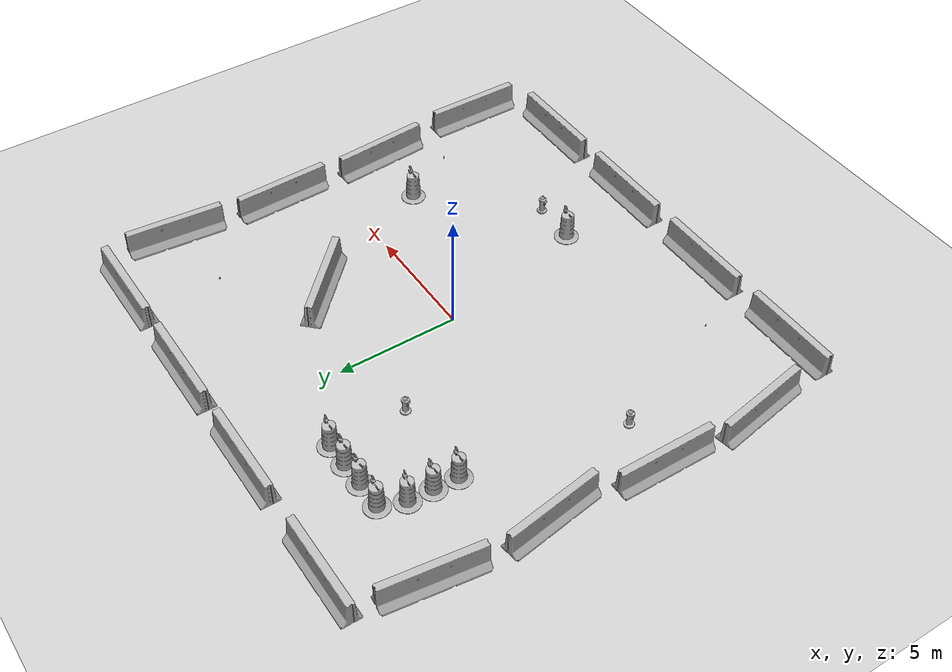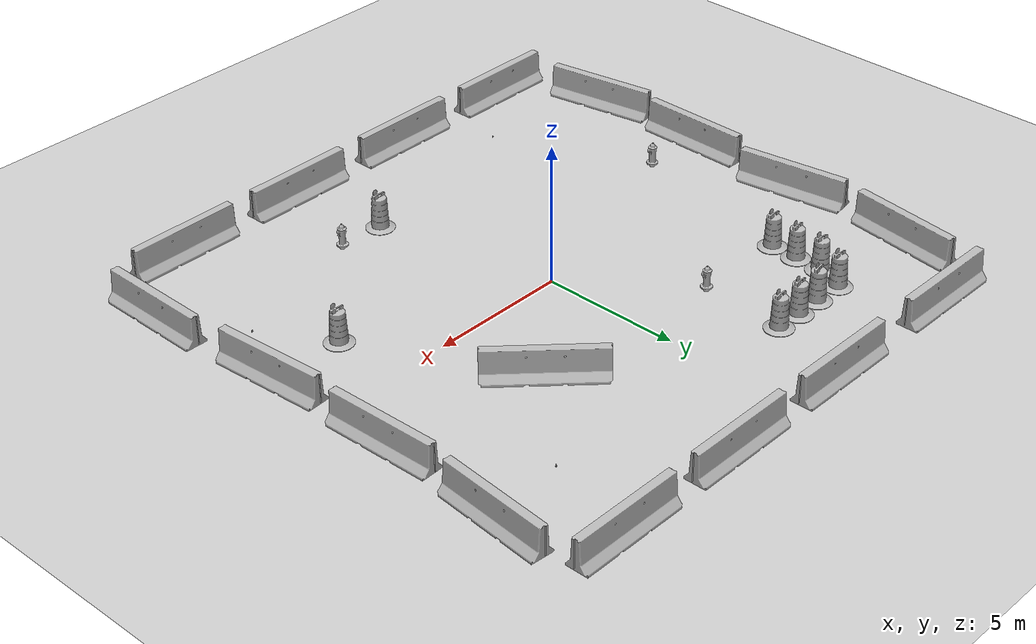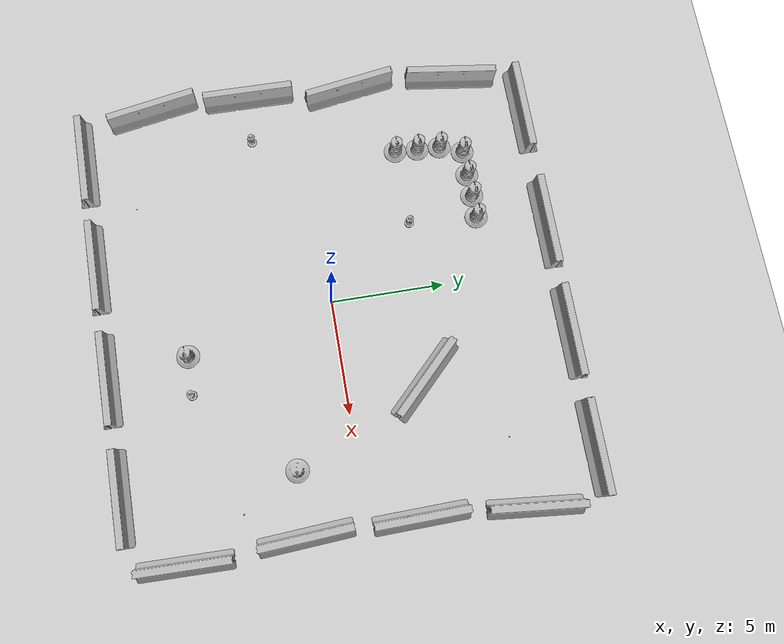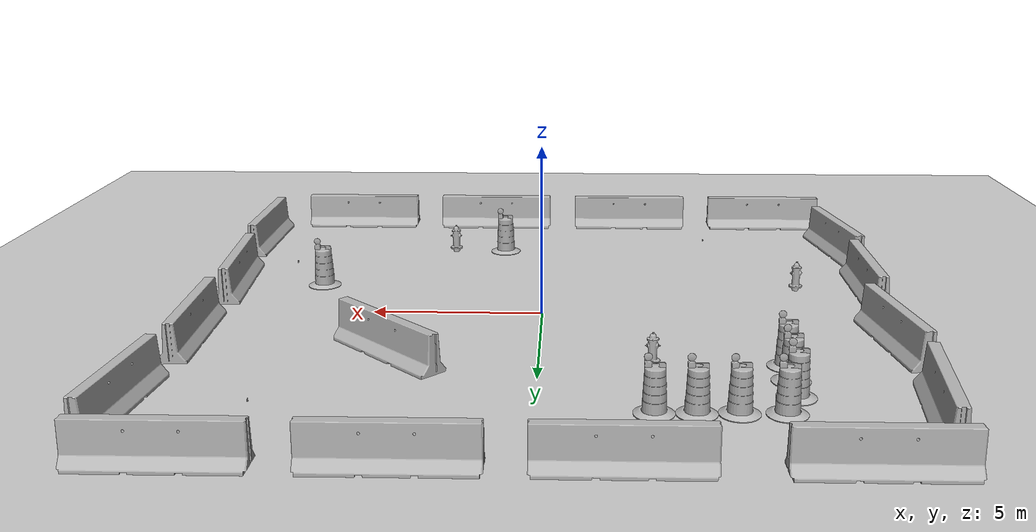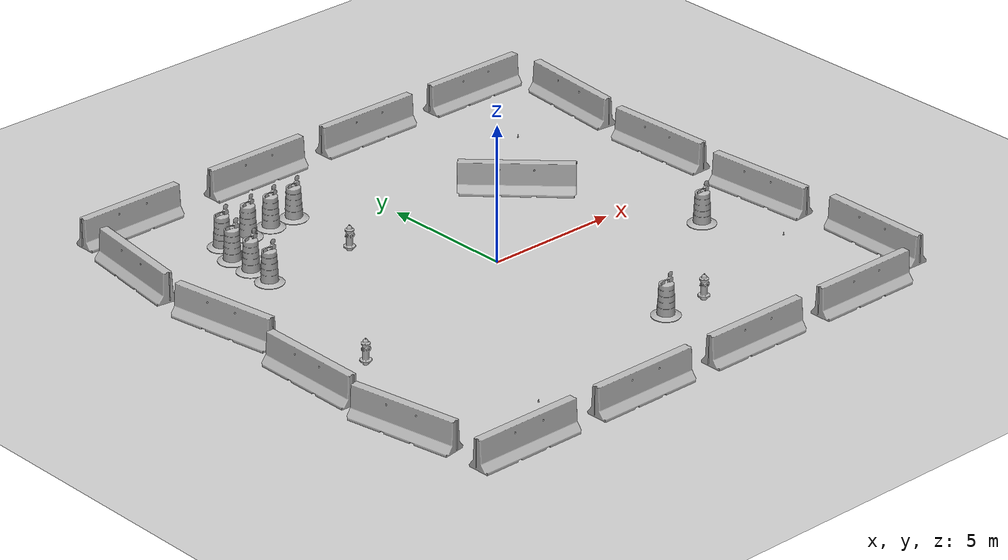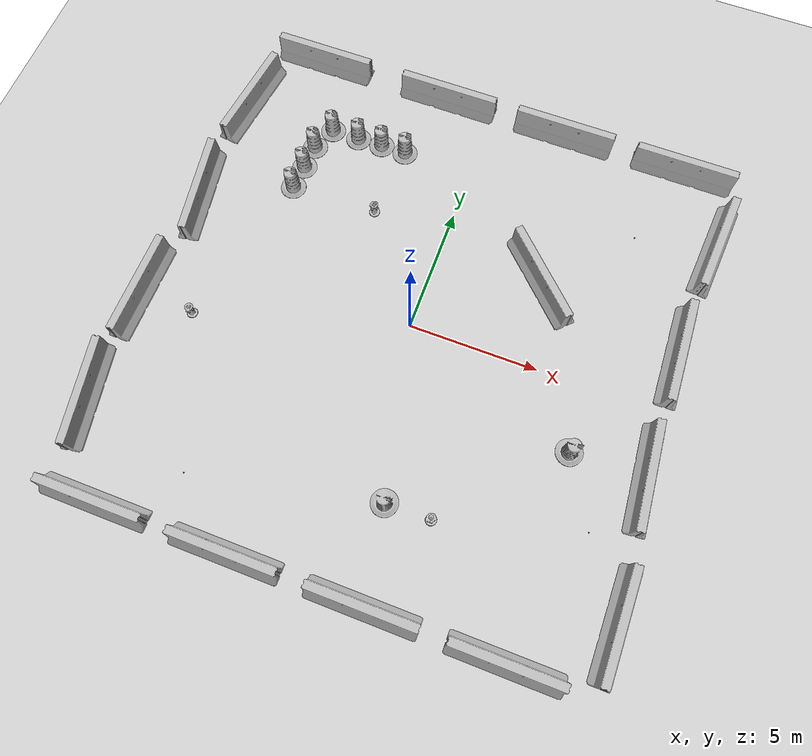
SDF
<sdf version="1.6">
 <world name="default">
  <light name="sun" type="directional">
   <pose>0 0 10 0 -0 0</pose>
   <diffuse>0.8 0.8 0.8 1</diffuse>
   <specular>0.2 0.2 0.2 1</specular>
   <attenuation>
    <range>1000</range>
    <constant>0.9</constant>
    <linear>0.01</linear>
    <quadratic>0.001</quadratic>
   </attenuation>
   <direction>-0.5 0.1 -0.9</direction>
  </light>
  <model name="ground_plane">
   <static>1</static>
   <link name="link">
    <collision name="collision">
     <geometry><plane><normal>0 0 1</normal><size>100 100</size></plane></geometry>
     <surface><friction><ode><mu>100</mu><mu2>50</mu2></ode></friction></surface>
    </collision>
    <visual name="visual">
     <cast_shadows>0</cast_shadows>
     <geometry><plane><normal>0 0 1</normal><size>100 100</size></plane></geometry>
     <material>
      <script><uri>file://media/materials/scripts/gazebo.material</uri><name>Gazebo/Grey</name></script>
     </material>
    </visual>
    <velocity_decay><linear>0</linear><angular>0</angular></velocity_decay>
   </link>
  </model>
  <physics name="default_physics" default="0" type="ode">
   <max_step_size>0.01</max_step_size>
   <real_time_factor>1</real_time_factor>
   <real_time_update_rate>100</real_time_update_rate>
  </physics>
  <scene><ambient>0.4 0.4 0.4 1</ambient><background>0.7 0.7 0.7 1</background><shadows>1</shadows></scene>
  <model name="jersey_barrier">
   <static>1</static>
   <link name="link">
    <visual name="visual">
     <geometry>
      <mesh><uri>model://jersey_barrier/meshes/jersey_barrier.dae</uri><scale>1 1 1</scale></mesh>
     </geometry>
    </visual>
    <collision name="upright">
     <pose>0 0 0.5715 0 -0 0</pose>
     <geometry><box><size>4.06542 0.3063 1.143</size></box></geometry>
    </collision>
    <collision name="base">
     <pose>0 0 0.032258 0 -0 0</pose>
     <geometry><box><size>4.06542 0.8107 0.064516</size></box></geometry>
    </collision>
    <collision name="base2">
     <pose>0 0 0.1 0 -0 0</pose>
     <geometry><box><size>4.06542 0.65 0.1</size></box></geometry>
    </collision>
    <collision name="base3">
     <pose>0 0 0.2 0 -0 0</pose>
     <geometry><box><size>4.06542 0.5 0.1</size></box></geometry>
    </collision>
    <collision name="left-angle">
     <pose>0 -0.224 0.2401 0.9 -0 0</pose>
     <geometry><box><size>4.06542 0.5 0.064516</size></box></geometry>
    </collision>
    <collision name="right-angle">
     <pose>0 0.224 0.2401 -0.9 0 0</pose>
     <geometry><box><size>4.06542 0.5 0.064516</size></box></geometry>
    </collision>
    <velocity_decay><linear>0</linear><angular>0</angular></velocity_decay>
   </link>
   <pose>-8 -10 0 0 -0 0</pose>
  </model>
  <model name="jersey_barrier_0">
   <static>1</static>
   <link name="link">
    <visual name="visual">
     <geometry>
      <mesh><uri>model://jersey_barrier/meshes/jersey_barrier.dae</uri><scale>1 1 1</scale></mesh>
     </geometry>
    </visual>
    <collision name="upright">
     <pose>0 0 0.5715 0 -0 0</pose>
     <geometry><box><size>4.06542 0.3063 1.143</size></box></geometry>
    </collision>
    <collision name="base">
     <pose>0 0 0.032258 0 -0 0</pose>
     <geometry><box><size>4.06542 0.8107 0.064516</size></box></geometry>
    </collision>
    <collision name="base2">
     <pose>0 0 0.1 0 -0 0</pose>
     <geometry><box><size>4.06542 0.65 0.1</size></box></geometry>
    </collision>
    <collision name="base3">
     <pose>0 0 0.2 0 -0 0</pose>
     <geometry><box><size>4.06542 0.5 0.1</size></box></geometry>
    </collision>
    <collision name="left-angle">
     <pose>0 -0.224 0.2401 0.9 -0 0</pose>
     <geometry><box><size>4.06542 0.5 0.064516</size></box></geometry>
    </collision>
    <collision name="right-angle">
     <pose>0 0.224 0.2401 -0.9 0 0</pose>
     <geometry><box><size>4.06542 0.5 0.064516</size></box></geometry>
    </collision>
    <velocity_decay><linear>0</linear><angular>0</angular></velocity_decay>
   </link>
   <pose>-3 -10 0 0 -0 0</pose>
  </model>
  <model name="jersey_barrier_1">
   <static>1</static>
   <link name="link">
    <visual name="visual">
     <geometry>
      <mesh><uri>model://jersey_barrier/meshes/jersey_barrier.dae</uri><scale>1 1 1</scale></mesh>
     </geometry>
    </visual>
    <collision name="upright">
     <pose>0 0 0.5715 0 -0 0</pose>
     <geometry><box><size>4.06542 0.3063 1.143</size></box></geometry>
    </collision>
    <collision name="base">
     <pose>0 0 0.032258 0 -0 0</pose>
     <geometry><box><size>4.06542 0.8107 0.064516</size></box></geometry>
    </collision>
    <collision name="base2">
     <pose>0 0 0.1 0 -0 0</pose>
     <geometry><box><size>4.06542 0.65 0.1</size></box></geometry>
    </collision>
    <collision name="base3">
     <pose>0 0 0.2 0 -0 0</pose>
     <geometry><box><size>4.06542 0.5 0.1</size></box></geometry>
    </collision>
    <collision name="left-angle">
     <pose>0 -0.224 0.2401 0.9 -0 0</pose>
     <geometry><box><size>4.06542 0.5 0.064516</size></box></geometry>
    </collision>
    <collision name="right-angle">
     <pose>0 0.224 0.2401 -0.9 0 0</pose>
     <geometry><box><size>4.06542 0.5 0.064516</size></box></geometry>
    </collision>
    <velocity_decay><linear>0</linear><angular>0</angular></velocity_decay>
   </link>
   <pose>2 -10 0 0 -0 0</pose>
  </model>
  <model name="jersey_barrier_2">
   <static>1</static>
   <link name="link">
    <visual name="visual">
     <geometry>
      <mesh><uri>model://jersey_barrier/meshes/jersey_barrier.dae</uri><scale>1 1 1</scale></mesh>
     </geometry>
    </visual>
    <collision name="upright">
     <pose>0 0 0.5715 0 -0 0</pose>
     <geometry><box><size>4.06542 0.3063 1.143</size></box></geometry>
    </collision>
    <collision name="base">
     <pose>0 0 0.032258 0 -0 0</pose>
     <geometry><box><size>4.06542 0.8107 0.064516</size></box></geometry>
    </collision>
    <collision name="base2">
     <pose>0 0 0.1 0 -0 0</pose>
     <geometry><box><size>4.06542 0.65 0.1</size></box></geometry>
    </collision>
    <collision name="base3">
     <pose>0 0 0.2 0 -0 0</pose>
     <geometry><box><size>4.06542 0.5 0.1</size></box></geometry>
    </collision>
    <collision name="left-angle">
     <pose>0 -0.224 0.2401 0.9 -0 0</pose>
     <geometry><box><size>4.06542 0.5 0.064516</size></box></geometry>
    </collision>
    <collision name="right-angle">
     <pose>0 0.224 0.2401 -0.9 0 0</pose>
     <geometry><box><size>4.06542 0.5 0.064516</size></box></geometry>
    </collision>
    <velocity_decay><linear>0</linear><angular>0</angular></velocity_decay>
   </link>
   <pose>7 -10 0 0 -0 0</pose>
  </model>
  <model name="jersey_barrier_3">
   <static>1</static>
   <link name="link">
    <visual name="visual">
     <geometry>
      <mesh><uri>model://jersey_barrier/meshes/jersey_barrier.dae</uri><scale>1 1 1</scale></mesh>
     </geometry>
    </visual>
    <collision name="upright">
     <pose>0 0 0.5715 0 -0 0</pose>
     <geometry><box><size>4.06542 0.3063 1.143</size></box></geometry>
    </collision>
    <collision name="base">
     <pose>0 0 0.032258 0 -0 0</pose>
     <geometry><box><size>4.06542 0.8107 0.064516</size></box></geometry>
    </collision>
    <collision name="base2">
     <pose>0 0 0.1 0 -0 0</pose>
     <geometry><box><size>4.06542 0.65 0.1</size></box></geometry>
    </collision>
    <collision name="base3">
     <pose>0 0 0.2 0 -0 0</pose>
     <geometry><box><size>4.06542 0.5 0.1</size></box></geometry>
    </collision>
    <collision name="left-angle">
     <pose>0 -0.224 0.2401 0.9 -0 0</pose>
     <geometry><box><size>4.06542 0.5 0.064516</size></box></geometry>
    </collision>
    <collision name="right-angle">
     <pose>0 0.224 0.2401 -0.9 0 0</pose>
     <geometry><box><size>4.06542 0.5 0.064516</size></box></geometry>
    </collision>
    <velocity_decay><linear>0</linear><angular>0</angular></velocity_decay>
   </link>
   <pose>-7.50675 10 0 0 -0 0</pose>
  </model>
  <model name="jersey_barrier_4">
   <static>1</static>
   <link name="link">
    <visual name="visual">
     <geometry>
      <mesh><uri>model://jersey_barrier/meshes/jersey_barrier.dae</uri><scale>1 1 1</scale></mesh>
     </geometry>
    </visual>
    <collision name="upright">
     <pose>0 0 0.5715 0 -0 0</pose>
     <geometry><box><size>4.06542 0.3063 1.143</size></box></geometry>
    </collision>
    <collision name="base">
     <pose>0 0 0.032258 0 -0 0</pose>
     <geometry><box><size>4.06542 0.8107 0.064516</size></box></geometry>
    </collision>
    <collision name="base2">
     <pose>0 0 0.1 0 -0 0</pose>
     <geometry><box><size>4.06542 0.65 0.1</size></box></geometry>
    </collision>
    <collision name="base3">
     <pose>0 0 0.2 0 -0 0</pose>
     <geometry><box><size>4.06542 0.5 0.1</size></box></geometry>
    </collision>
    <collision name="left-angle">
     <pose>0 -0.224 0.2401 0.9 -0 0</pose>
     <geometry><box><size>4.06542 0.5 0.064516</size></box></geometry>
    </collision>
    <collision name="right-angle">
     <pose>0 0.224 0.2401 -0.9 0 0</pose>
     <geometry><box><size>4.06542 0.5 0.064516</size></box></geometry>
    </collision>
    <velocity_decay><linear>0</linear><angular>0</angular></velocity_decay>
   </link>
   <pose>-2 10 0 0 -0 0</pose>
  </model>
  <model name="jersey_barrier_5">
   <static>1</static>
   <link name="link">
    <visual name="visual">
     <geometry>
      <mesh><uri>model://jersey_barrier/meshes/jersey_barrier.dae</uri><scale>1 1 1</scale></mesh>
     </geometry>
    </visual>
    <collision name="upright">
     <pose>0 0 0.5715 0 -0 0</pose>
     <geometry><box><size>4.06542 0.3063 1.143</size></box></geometry>
    </collision>
    <collision name="base">
     <pose>0 0 0.032258 0 -0 0</pose>
     <geometry><box><size>4.06542 0.8107 0.064516</size></box></geometry>
    </collision>
    <collision name="base2">
     <pose>0 0 0.1 0 -0 0</pose>
     <geometry><box><size>4.06542 0.65 0.1</size></box></geometry>
    </collision>
    <collision name="base3">
     <pose>0 0 0.2 0 -0 0</pose>
     <geometry><box><size>4.06542 0.5 0.1</size></box></geometry>
    </collision>
    <collision name="left-angle">
     <pose>0 -0.224 0.2401 0.9 -0 0</pose>
     <geometry><box><size>4.06542 0.5 0.064516</size></box></geometry>
    </collision>
    <collision name="right-angle">
     <pose>0 0.224 0.2401 -0.9 0 0</pose>
     <geometry><box><size>4.06542 0.5 0.064516</size></box></geometry>
    </collision>
    <velocity_decay><linear>0</linear><angular>0</angular></velocity_decay>
   </link>
   <pose>3 10 0 0 -0 0</pose>
  </model>
  <model name="jersey_barrier_6">
   <static>1</static>
   <link name="link">
    <visual name="visual">
     <geometry>
      <mesh><uri>model://jersey_barrier/meshes/jersey_barrier.dae</uri><scale>1 1 1</scale></mesh>
     </geometry>
    </visual>
    <collision name="upright">
     <pose>0 0 0.5715 0 -0 0</pose>
     <geometry><box><size>4.06542 0.3063 1.143</size></box></geometry>
    </collision>
    <collision name="base">
     <pose>0 0 0.032258 0 -0 0</pose>
     <geometry><box><size>4.06542 0.8107 0.064516</size></box></geometry>
    </collision>
    <collision name="base2">
     <pose>0 0 0.1 0 -0 0</pose>
     <geometry><box><size>4.06542 0.65 0.1</size></box></geometry>
    </collision>
    <collision name="base3">
     <pose>0 0 0.2 0 -0 0</pose>
     <geometry><box><size>4.06542 0.5 0.1</size></box></geometry>
    </collision>
    <collision name="left-angle">
     <pose>0 -0.224 0.2401 0.9 -0 0</pose>
     <geometry><box><size>4.06542 0.5 0.064516</size></box></geometry>
    </collision>
    <collision name="right-angle">
     <pose>0 0.224 0.2401 -0.9 0 0</pose>
     <geometry><box><size>4.06542 0.5 0.064516</size></box></geometry>
    </collision>
    <velocity_decay><linear>0</linear><angular>0</angular></velocity_decay>
   </link>
   <pose>8 10 0 0 -0 0</pose>
  </model>
  <model name="jersey_barrier_7">
   <static>1</static>
   <link name="link">
    <visual name="visual">
     <geometry>
      <mesh><uri>model://jersey_barrier/meshes/jersey_barrier.dae</uri><scale>1 1 1</scale></mesh>
     </geometry>
    </visual>
    <collision name="upright">
     <pose>0 0 0.5715 0 -0 0</pose>
     <geometry><box><size>4.06542 0.3063 1.143</size></box></geometry>
    </collision>
    <collision name="base">
     <pose>0 0 0.032258 0 -0 0</pose>
     <geometry><box><size>4.06542 0.8107 0.064516</size></box></geometry>
    </collision>
    <collision name="base2">
     <pose>0 0 0.1 0 -0 0</pose>
     <geometry><box><size>4.06542 0.65 0.1</size></box></geometry>
    </collision>
    <collision name="base3">
     <pose>0 0 0.2 0 -0 0</pose>
     <geometry><box><size>4.06542 0.5 0.1</size></box></geometry>
    </collision>
    <collision name="left-angle">
     <pose>0 -0.224 0.2401 0.9 -0 0</pose>
     <geometry><box><size>4.06542 0.5 0.064516</size></box></geometry>
    </collision>
    <collision name="right-angle">
     <pose>0 0.224 0.2401 -0.9 0 0</pose>
     <geometry><box><size>4.06542 0.5 0.064516</size></box></geometry>
    </collision>
    <velocity_decay><linear>0</linear><angular>0</angular></velocity_decay>
   </link>
   <pose>9.74902 -2.57759 0 0 -0 1.64</pose>
  </model>
  <model name="jersey_barrier_8">
   <static>1</static>
   <link name="link">
    <visual name="visual">
     <geometry>
      <mesh><uri>model://jersey_barrier/meshes/jersey_barrier.dae</uri><scale>1 1 1</scale></mesh>
     </geometry>
    </visual>
    <collision name="upright">
     <pose>0 0 0.5715 0 -0 0</pose>
     <geometry><box><size>4.06542 0.3063 1.143</size></box></geometry>
    </collision>
    <collision name="base">
     <pose>0 0 0.032258 0 -0 0</pose>
     <geometry><box><size>4.06542 0.8107 0.064516</size></box></geometry>
    </collision>
    <collision name="base2">
     <pose>0 0 0.1 0 -0 0</pose>
     <geometry><box><size>4.06542 0.65 0.1</size></box></geometry>
    </collision>
    <collision name="base3">
     <pose>0 0 0.2 0 -0 0</pose>
     <geometry><box><size>4.06542 0.5 0.1</size></box></geometry>
    </collision>
    <collision name="left-angle">
     <pose>0 -0.224 0.2401 0.9 -0 0</pose>
     <geometry><box><size>4.06542 0.5 0.064516</size></box></geometry>
    </collision>
    <collision name="right-angle">
     <pose>0 0.224 0.2401 -0.9 0 0</pose>
     <geometry><box><size>4.06542 0.5 0.064516</size></box></geometry>
    </collision>
    <velocity_decay><linear>0</linear><angular>0</angular></velocity_decay>
   </link>
   <pose>9.70141 2.24369 0 0 -0 1.6</pose>
  </model>
  <model name="jersey_barrier_9">
   <static>1</static>
   <link name="link">
    <visual name="visual">
     <geometry>
      <mesh><uri>model://jersey_barrier/meshes/jersey_barrier.dae</uri><scale>1 1 1</scale></mesh>
     </geometry>
    </visual>
    <collision name="upright">
     <pose>0 0 0.5715 0 -0 0</pose>
     <geometry><box><size>4.06542 0.3063 1.143</size></box></geometry>
    </collision>
    <collision name="base">
     <pose>0 0 0.032258 0 -0 0</pose>
     <geometry><box><size>4.06542 0.8107 0.064516</size></box></geometry>
    </collision>
    <collision name="base2">
     <pose>0 0 0.1 0 -0 0</pose>
     <geometry><box><size>4.06542 0.65 0.1</size></box></geometry>
    </collision>
    <collision name="base3">
     <pose>0 0 0.2 0 -0 0</pose>
     <geometry><box><size>4.06542 0.5 0.1</size></box></geometry>
    </collision>
    <collision name="left-angle">
     <pose>0 -0.224 0.2401 0.9 -0 0</pose>
     <geometry><box><size>4.06542 0.5 0.064516</size></box></geometry>
    </collision>
    <collision name="right-angle">
     <pose>0 0.224 0.2401 -0.9 0 0</pose>
     <geometry><box><size>4.06542 0.5 0.064516</size></box></geometry>
    </collision>
    <velocity_decay><linear>0</linear><angular>0</angular></velocity_decay>
   </link>
   <pose>-10.0607 -6.69856 0 0 0 -1.4</pose>
  </model>
  <model name="jersey_barrier_10">
   <static>1</static>
   <link name="link">
    <visual name="visual">
     <geometry>
      <mesh><uri>model://jersey_barrier/meshes/jersey_barrier.dae</uri><scale>1 1 1</scale></mesh>
     </geometry>
    </visual>
    <collision name="upright">
     <pose>0 0 0.5715 0 -0 0</pose>
     <geometry><box><size>4.06542 0.3063 1.143</size></box></geometry>
    </collision>
    <collision name="base">
     <pose>0 0 0.032258 0 -0 0</pose>
     <geometry><box><size>4.06542 0.8107 0.064516</size></box></geometry>
    </collision>
    <collision name="base2">
     <pose>0 0 0.1 0 -0 0</pose>
     <geometry><box><size>4.06542 0.65 0.1</size></box></geometry>
    </collision>
    <collision name="base3">
     <pose>0 0 0.2 0 -0 0</pose>
     <geometry><box><size>4.06542 0.5 0.1</size></box></geometry>
    </collision>
    <collision name="left-angle">
     <pose>0 -0.224 0.2401 0.9 -0 0</pose>
     <geometry><box><size>4.06542 0.5 0.064516</size></box></geometry>
    </collision>
    <collision name="right-angle">
     <pose>0 0.224 0.2401 -0.9 0 0</pose>
     <geometry><box><size>4.06542 0.5 0.064516</size></box></geometry>
    </collision>
    <velocity_decay><linear>0</linear><angular>0</angular></velocity_decay>
   </link>
   <pose>-10.0774 -2.27159 0 0 -0 1.56</pose>
  </model>
  <model name="jersey_barrier_11">
   <static>1</static>
   <link name="link">
    <visual name="visual">
     <geometry>
      <mesh><uri>model://jersey_barrier/meshes/jersey_barrier.dae</uri><scale>1 1 1</scale></mesh>
     </geometry>
    </visual>
    <collision name="upright">
     <pose>0 0 0.5715 0 -0 0</pose>
     <geometry><box><size>4.06542 0.3063 1.143</size></box></geometry>
    </collision>
    <collision name="base">
     <pose>0 0 0.032258 0 -0 0</pose>
     <geometry><box><size>4.06542 0.8107 0.064516</size></box></geometry>
    </collision>
    <collision name="base2">
     <pose>0 0 0.1 0 -0 0</pose>
     <geometry><box><size>4.06542 0.65 0.1</size></box></geometry>
    </collision>
    <collision name="base3">
     <pose>0 0 0.2 0 -0 0</pose>
     <geometry><box><size>4.06542 0.5 0.1</size></box></geometry>
    </collision>
    <collision name="left-angle">
     <pose>0 -0.224 0.2401 0.9 -0 0</pose>
     <geometry><box><size>4.06542 0.5 0.064516</size></box></geometry>
    </collision>
    <collision name="right-angle">
     <pose>0 0.224 0.2401 -0.9 0 0</pose>
     <geometry><box><size>4.06542 0.5 0.064516</size></box></geometry>
    </collision>
    <velocity_decay><linear>0</linear><angular>0</angular></velocity_decay>
   </link>
   <pose>-9.77013 2.34791 0 0 -0 1.72</pose>
  </model>
  <model name="jersey_barrier_12">
   <static>1</static>
   <link name="link">
    <visual name="visual">
     <geometry>
      <mesh><uri>model://jersey_barrier/meshes/jersey_barrier.dae</uri><scale>1 1 1</scale></mesh>
     </geometry>
    </visual>
    <collision name="upright">
     <pose>0 0 0.5715 0 -0 0</pose>
     <geometry><box><size>4.06542 0.3063 1.143</size></box></geometry>
    </collision>
    <collision name="base">
     <pose>0 0 0.032258 0 -0 0</pose>
     <geometry><box><size>4.06542 0.8107 0.064516</size></box></geometry>
    </collision>
    <collision name="base2">
     <pose>0 0 0.1 0 -0 0</pose>
     <geometry><box><size>4.06542 0.65 0.1</size></box></geometry>
    </collision>
    <collision name="base3">
     <pose>0 0 0.2 0 -0 0</pose>
     <geometry><box><size>4.06542 0.5 0.1</size></box></geometry>
    </collision>
    <collision name="left-angle">
     <pose>0 -0.224 0.2401 0.9 -0 0</pose>
     <geometry><box><size>4.06542 0.5 0.064516</size></box></geometry>
    </collision>
    <collision name="right-angle">
     <pose>0 0.224 0.2401 -0.9 0 0</pose>
     <geometry><box><size>4.06542 0.5 0.064516</size></box></geometry>
    </collision>
    <velocity_decay><linear>0</linear><angular>0</angular></velocity_decay>
   </link>
   <pose>10.0879 -7.62159 0 0 -0 1.56</pose>
  </model>
  <model name="jersey_barrier_13">
   <static>1</static>
   <link name="link">
    <visual name="visual">
     <geometry>
      <mesh><uri>model://jersey_barrier/meshes/jersey_barrier.dae</uri><scale>1 1 1</scale></mesh>
     </geometry>
    </visual>
    <collision name="upright">
     <pose>0 0 0.5715 0 -0 0</pose>
     <geometry><box><size>4.06542 0.3063 1.143</size></box></geometry>
    </collision>
    <collision name="base">
     <pose>0 0 0.032258 0 -0 0</pose>
     <geometry><box><size>4.06542 0.8107 0.064516</size></box></geometry>
    </collision>
    <collision name="base2">
     <pose>0 0 0.1 0 -0 0</pose>
     <geometry><box><size>4.06542 0.65 0.1</size></box></geometry>
    </collision>
    <collision name="base3">
     <pose>0 0 0.2 0 -0 0</pose>
     <geometry><box><size>4.06542 0.5 0.1</size></box></geometry>
    </collision>
    <collision name="left-angle">
     <pose>0 -0.224 0.2401 0.9 -0 0</pose>
     <geometry><box><size>4.06542 0.5 0.064516</size></box></geometry>
    </collision>
    <collision name="right-angle">
     <pose>0 0.224 0.2401 -0.9 0 0</pose>
     <geometry><box><size>4.06542 0.5 0.064516</size></box></geometry>
    </collision>
    <velocity_decay><linear>0</linear><angular>0</angular></velocity_decay>
   </link>
   <pose>10 7 0 0 -0 1.48</pose>
  </model>
  <model name="jersey_barrier_14">
   <static>1</static>
   <link name="link">
    <visual name="visual">
     <geometry>
      <mesh><uri>model://jersey_barrier/meshes/jersey_barrier.dae</uri><scale>1 1 1</scale></mesh>
     </geometry>
    </visual>
    <collision name="upright">
     <pose>0 0 0.5715 0 -0 0</pose>
     <geometry><box><size>4.06542 0.3063 1.143</size></box></geometry>
    </collision>
    <collision name="base">
     <pose>0 0 0.032258 0 -0 0</pose>
     <geometry><box><size>4.06542 0.8107 0.064516</size></box></geometry>
    </collision>
    <collision name="base2">
     <pose>0 0 0.1 0 -0 0</pose>
     <geometry><box><size>4.06542 0.65 0.1</size></box></geometry>
    </collision>
    <collision name="base3">
     <pose>0 0 0.2 0 -0 0</pose>
     <geometry><box><size>4.06542 0.5 0.1</size></box></geometry>
    </collision>
    <collision name="left-angle">
     <pose>0 -0.224 0.2401 0.9 -0 0</pose>
     <geometry><box><size>4.06542 0.5 0.064516</size></box></geometry>
    </collision>
    <collision name="right-angle">
     <pose>0 0.224 0.2401 -0.9 0 0</pose>
     <geometry><box><size>4.06542 0.5 0.064516</size></box></geometry>
    </collision>
    <velocity_decay><linear>0</linear><angular>0</angular></velocity_decay>
   </link>
   <pose>-9.64482 7.05946 0 0 -0 1.44</pose>
  </model>
  <model name="fire_hydrant">
   <static>1</static>
   <link name="link">
    <collision name="collision">
     <geometry><mesh><uri>model://fire_hydrant/meshes/fire_hydrant.dae</uri><scale>1 1 1</scale></mesh></geometry>
    </collision>
    <visual name="visual">
     <geometry><mesh><uri>model://fire_hydrant/meshes/fire_hydrant.dae</uri><scale>1 1 1</scale></mesh></geometry>
    </visual>
    <velocity_decay><linear>0</linear><angular>0</angular></velocity_decay>
   </link>
   <pose>3.18024 -6.51118 0 0 -0 0</pose>
  </model>
  <model name="fire_hydrant_0">
   <static>1</static>
   <link name="link">
    <collision name="collision">
     <geometry><mesh><uri>model://fire_hydrant/meshes/fire_hydrant.dae</uri><scale>1 1 1</scale></mesh></geometry>
    </collision>
    <visual name="visual">
     <geometry><mesh><uri>model://fire_hydrant/meshes/fire_hydrant.dae</uri><scale>1 1 1</scale></mesh></geometry>
    </visual>
    <velocity_decay><linear>0</linear><angular>0</angular></velocity_decay>
   </link>
   <pose>-3 4 0 0 -0 0</pose>
  </model>
  <model name="fire_hydrant_1">
   <static>1</static>
   <link name="link">
    <collision name="collision">
     <geometry><mesh><uri>model://fire_hydrant/meshes/fire_hydrant.dae</uri><scale>1 1 1</scale></mesh></geometry>
    </collision>
    <visual name="visual">
     <geometry><mesh><uri>model://fire_hydrant/meshes/fire_hydrant.dae</uri><scale>1 1 1</scale></mesh></geometry>
    </visual>
    <velocity_decay><linear>0</linear><angular>0</angular></velocity_decay>
   </link>
   <pose>-7.90686 -2.41363 0 0 -0 0</pose>
  </model>
  <model name="jersey_barrier_15">
   <static>1</static>
   <link name="link">
    <visual name="visual">
     <geometry>
      <mesh><uri>model://jersey_barrier/meshes/jersey_barrier.dae</uri><scale>1 1 1</scale></mesh>
     </geometry>
    </visual>
    <collision name="upright">
     <pose>0 0 0.5715 0 -0 0</pose>
     <geometry><box><size>4.06542 0.3063 1.143</size></box></geometry>
    </collision>
    <collision name="base">
     <pose>0 0 0.032258 0 -0 0</pose>
     <geometry><box><size>4.06542 0.8107 0.064516</size></box></geometry>
    </collision>
    <collision name="base2">
     <pose>0 0 0.1 0 -0 0</pose>
     <geometry><box><size>4.06542 0.65 0.1</size></box></geometry>
    </collision>
    <collision name="base3">
     <pose>0 0 0.2 0 -0 0</pose>
     <geometry><box><size>4.06542 0.5 0.1</size></box></geometry>
    </collision>
    <collision name="left-angle">
     <pose>0 -0.224 0.2401 0.9 -0 0</pose>
     <geometry><box><size>4.06542 0.5 0.064516</size></box></geometry>
    </collision>
    <collision name="right-angle">
     <pose>0 0.224 0.2401 -0.9 0 0</pose>
     <geometry><box><size>4.06542 0.5 0.064516</size></box></geometry>
    </collision>
    <velocity_decay><linear>0</linear><angular>0</angular></velocity_decay>
   </link>
   <pose>4.05485 3.43086 0 0 -0 2.36</pose>
  </model>
  <model name="Construction Cone">
   <link name="link">
    <collision name="collision">
     <geometry>
      <mesh><scale>1 1 1</scale><uri>model://construction_cone/meshes/construction_cone.dae</uri></mesh>
     </geometry>
    </collision>
    <visual name="visual">
     <geometry>
      <mesh><scale>1 1 1</scale><uri>model://construction_cone/meshes/construction_cone.dae</uri></mesh>
     </geometry>
    </visual>
    <velocity_decay><linear>0</linear><angular>0</angular></velocity_decay>
    <inertial>
     <inertia><ixx>1</ixx><ixy>0</ixy><ixz>0</ixz><iyy>1</iyy><iyz>0</iyz><izz>1</izz></inertia>
     <mass>1</mass>
    </inertial>
   </link>
   <pose>-5.59121 -8 -0.000979 4e-06 -2e-06 0</pose>
   <static>0</static>
  </model>
  <model name="Construction Barrel">
   <link name="link">
    <inertial>
     <pose>0 0 0.4 0 -0 0</pose>
     <mass>500</mass>
     <inertia><ixx>51.2096</ixx><iyy>51.2096</iyy><izz>25</izz><ixy>0</ixy><ixz>0</ixz><iyz>0</iyz></inertia>
    </inertial>
    <collision name="collision">
     <geometry>
      <mesh><uri>model://construction_barrel/meshes/construction_barrel.dae</uri><scale>1 1 1</scale></mesh>
     </geometry>
    </collision>
    <visual name="visual">
     <geometry>
      <mesh><uri>model://construction_barrel/meshes/construction_barrel.dae</uri><scale>1 1 1</scale></mesh>
     </geometry>
    </visual>
    <velocity_decay><linear>0</linear><angular>0</angular></velocity_decay>
   </link>
   <pose>7.00015 -2.54637 -9e-05 0.000308 -0.000178 9.4e-05</pose>
   <static>0</static>
  </model>
  <model name="Construction Cone_0">
   <link name="link">
    <collision name="collision">
     <geometry>
      <mesh><scale>1 1 1</scale><uri>model://construction_cone/meshes/construction_cone.dae</uri></mesh>
     </geometry>
    </collision>
    <visual name="visual">
     <geometry>
      <mesh><scale>1 1 1</scale><uri>model://construction_cone/meshes/construction_cone.dae</uri></mesh>
     </geometry>
    </visual>
    <velocity_decay><linear>0</linear><angular>0</angular></velocity_decay>
    <inertial>
     <inertia><ixx>1</ixx><ixy>0</ixy><ixz>0</ixz><iyy>1</iyy><iyz>0</iyz><izz>1</izz></inertia>
     <mass>1</mass>
    </inertial>
   </link>
   <pose>6.99685 6.55732 -0.000979 4e-06 -2e-06 -0.007012</pose>
   <static>0</static>
  </model>
  <model name="Construction Barrel_0">
   <link name="link">
    <inertial>
     <pose>0 0 0.4 0 -0 0</pose>
     <mass>500</mass>
     <inertia><ixx>51.2096</ixx><iyy>51.2096</iyy><izz>25</izz><ixy>0</ixy><ixz>0</ixz><iyz>0</iyz></inertia>
    </inertial>
    <collision name="collision">
     <geometry>
      <mesh><uri>model://construction_barrel/meshes/construction_barrel.dae</uri><scale>1 1 1</scale></mesh>
     </geometry>
    </collision>
    <visual name="visual">
     <geometry>
      <mesh><uri>model://construction_barrel/meshes/construction_barrel.dae</uri><scale>1 1 1</scale></mesh>
     </geometry>
    </visual>
    <velocity_decay><linear>0</linear><angular>0</angular></velocity_decay>
   </link>
   <pose>1.45176 -6.51129 -8.8e-05 -8.2e-05 0.000332 1e-05</pose>
   <static>0</static>
  </model>
  <model name="Construction Barrel_1">
   <link name="link">
    <inertial>
     <pose>0 0 0.4 0 -0 0</pose>
     <mass>500</mass>
     <inertia><ixx>51.2096</ixx><iyy>51.2096</iyy><izz>25</izz><ixy>0</ixy><ixz>0</ixz><iyz>0</iyz></inertia>
    </inertial>
    <collision name="collision">
     <geometry>
      <mesh><uri>model://construction_barrel/meshes/construction_barrel.dae</uri><scale>1 1 1</scale></mesh>
     </geometry>
    </collision>
    <visual name="visual">
     <geometry>
      <mesh><uri>model://construction_barrel/meshes/construction_barrel.dae</uri><scale>1 1 1</scale></mesh>
     </geometry>
    </visual>
    <velocity_decay><linear>0</linear><angular>0</angular></velocity_decay>
   </link>
   <pose>-6.50486 3.9826 -8.8e-05 -8.2e-05 0.000332 -0.009578</pose>
   <static>0</static>
  </model>
  <model name="Construction Barrel_2">
   <link name="link">
    <inertial>
     <pose>0 0 0.4 0 -0 0</pose>
     <mass>500</mass>
     <inertia><ixx>51.2096</ixx><iyy>51.2096</iyy><izz>25</izz><ixy>0</ixy><ixz>0</ixz><iyz>0</iyz></inertia>
    </inertial>
    <collision name="collision">
     <geometry>
      <mesh><uri>model://construction_barrel/meshes/construction_barrel.dae</uri><scale>1 1 1</scale></mesh>
     </geometry>
    </collision>
    <visual name="visual">
     <geometry>
      <mesh><uri>model://construction_barrel/meshes/construction_barrel.dae</uri><scale>1 1 1</scale></mesh>
     </geometry>
    </visual>
    <velocity_decay><linear>0</linear><angular>0</angular></velocity_decay>
   </link>
   <pose>-6.45067 4.99639 -8.8e-05 -8.4e-05 0.000333 0.06498</pose>
   <static>0</static>
  </model>
  <model name="Construction Barrel_3">
   <link name="link">
    <inertial>
     <pose>0 0 0.4 0 -0 0</pose>
     <mass>500</mass>
     <inertia><ixx>51.2096</ixx><iyy>51.2096</iyy><izz>25</izz><ixy>0</ixy><ixz>0</ixz><iyz>0</iyz></inertia>
    </inertial>
    <collision name="collision">
     <geometry>
      <mesh><uri>model://construction_barrel/meshes/construction_barrel.dae</uri><scale>1 1 1</scale></mesh>
     </geometry>
    </collision>
    <visual name="visual">
     <geometry>
      <mesh><uri>model://construction_barrel/meshes/construction_barrel.dae</uri><scale>1 1 1</scale></mesh>
     </geometry>
    </visual>
    <velocity_decay><linear>0</linear><angular>0</angular></velocity_decay>
   </link>
   <pose>-6.40175 6.01112 -9.3e-05 0.000307 -0.000192 -0.120773</pose>
   <static>0</static>
  </model>
  <model name="Construction Barrel_4">
   <link name="link">
    <inertial>
     <pose>0 0 0.4 0 -0 0</pose>
     <mass>500</mass>
     <inertia><ixx>51.2096</ixx><iyy>51.2096</iyy><izz>25</izz><ixy>0</ixy><ixz>0</ixz><iyz>0</iyz></inertia>
    </inertial>
    <collision name="collision">
     <geometry>
      <mesh><uri>model://construction_barrel/meshes/construction_barrel.dae</uri><scale>1 1 1</scale></mesh>
     </geometry>
    </collision>
    <visual name="visual">
     <geometry>
      <mesh><uri>model://construction_barrel/meshes/construction_barrel.dae</uri><scale>1 1 1</scale></mesh>
     </geometry>
    </visual>
    <velocity_decay><linear>0</linear><angular>0</angular></velocity_decay>
   </link>
   <pose>-6.00641 7.00883 1e-06 6e-06 3e-06 -0.049579</pose>
   <static>0</static>
  </model>
  <model name="Construction Barrel_5">
   <link name="link">
    <inertial>
     <pose>0 0 0.4 0 -0 0</pose>
     <mass>500</mass>
     <inertia><ixx>51.2096</ixx><iyy>51.2096</iyy><izz>25</izz><ixy>0</ixy><ixz>0</ixz><iyz>0</iyz></inertia>
    </inertial>
    <collision name="collision">
     <geometry>
      <mesh><uri>model://construction_barrel/meshes/construction_barrel.dae</uri><scale>1 1 1</scale></mesh>
     </geometry>
    </collision>
    <visual name="visual">
     <geometry>
      <mesh><uri>model://construction_barrel/meshes/construction_barrel.dae</uri><scale>1 1 1</scale></mesh>
     </geometry>
    </visual>
    <velocity_decay><linear>0</linear><angular>0</angular></velocity_decay>
   </link>
   <pose>-4.87882 7.00816 -8.8e-05 -8.5e-05 0.000334 0.14654</pose>
   <static>0</static>
  </model>
  <model name="Construction Barrel_6">
   <link name="link">
    <inertial>
     <pose>0 0 0.4 0 -0 0</pose>
     <mass>500</mass>
     <inertia><ixx>51.2096</ixx><iyy>51.2096</iyy><izz>25</izz><ixy>0</ixy><ixz>0</ixz><iyz>0</iyz></inertia>
    </inertial>
    <collision name="collision">
     <geometry>
      <mesh><uri>model://construction_barrel/meshes/construction_barrel.dae</uri><scale>1 1 1</scale></mesh>
     </geometry>
    </collision>
    <visual name="visual">
     <geometry>
      <mesh><uri>model://construction_barrel/meshes/construction_barrel.dae</uri><scale>1 1 1</scale></mesh>
     </geometry>
    </visual>
    <velocity_decay><linear>0</linear><angular>0</angular></velocity_decay>
   </link>
   <pose>-3.86325 7.03731 1e-06 5e-06 2e-06 0.034793</pose>
   <static>0</static>
  </model>
  <model name="Construction Barrel_7">
   <link name="link">
    <inertial>
     <pose>0 0 0.4 0 -0 0</pose>
     <mass>500</mass>
     <inertia><ixx>51.2096</ixx><iyy>51.2096</iyy><izz>25</izz><ixy>0</ixy><ixz>0</ixz><iyz>0</iyz></inertia>
    </inertial>
    <collision name="collision">
     <geometry>
      <mesh><uri>model://construction_barrel/meshes/construction_barrel.dae</uri><scale>1 1 1</scale></mesh>
     </geometry>
    </collision>
    <visual name="visual">
     <geometry>
      <mesh><uri>model://construction_barrel/meshes/construction_barrel.dae</uri><scale>1 1 1</scale></mesh>
     </geometry>
    </visual>
    <velocity_decay><linear>0</linear><angular>0</angular></velocity_decay>
   </link>
   <pose>-2.84659 7.03848 0 0 1e-06 0.023619</pose>
   <static>0</static>
  </model>
  <model name="Construction Cone_1">
   <link name="link">
    <collision name="collision">
     <geometry>
      <mesh><scale>1 1 1</scale><uri>model://construction_cone/meshes/construction_cone.dae</uri></mesh>
     </geometry>
    </collision>
    <visual name="visual">
     <geometry>
      <mesh><scale>1 1 1</scale><uri>model://construction_cone/meshes/construction_cone.dae</uri></mesh>
     </geometry>
    </visual>
    <velocity_decay><linear>0</linear><angular>0</angular></velocity_decay>
    <inertial>
     <inertia><ixx>1</ixx><ixy>0</ixy><ixz>0</ixz><iyy>1</iyy><iyz>0</iyz><izz>1</izz></inertia>
     <mass>1</mass>
    </inertial>
   </link>
   <pose>8.42887 -5 0 0 -0 0</pose>
   <static>0</static>
  </model>
  <gravity>0 0 -9.8</gravity>
  <magnetic_field>6e-06 2.3e-05 -4.2e-05</magnetic_field>
  <atmosphere type="adiabatic"/>
  <spherical_coordinates>
   <surface_model>EARTH_WGS84</surface_model>
   <latitude_deg>0</latitude_deg>
   <longitude_deg>0</longitude_deg>
   <elevation>0</elevation>
   <heading_deg>0</heading_deg>
  </spherical_coordinates>
 </world>
</sdf>
